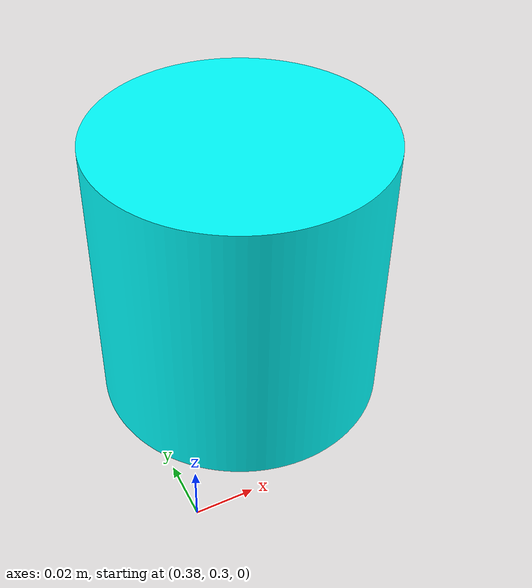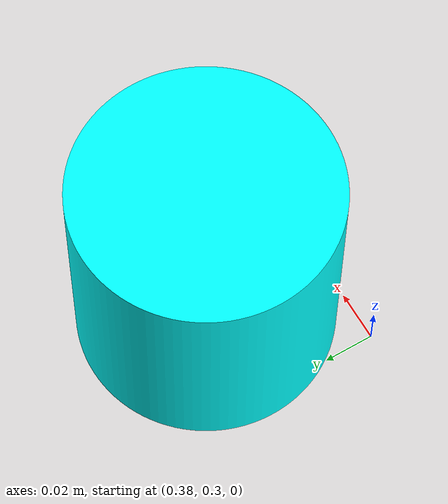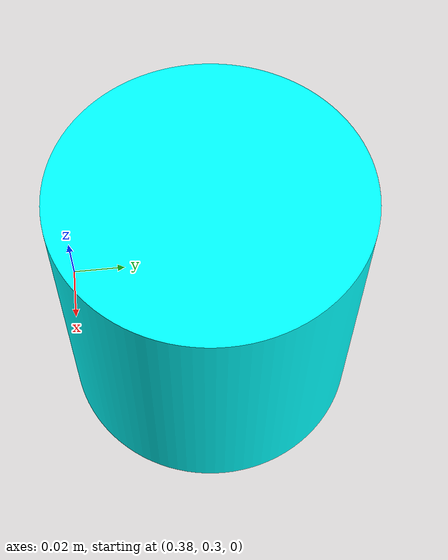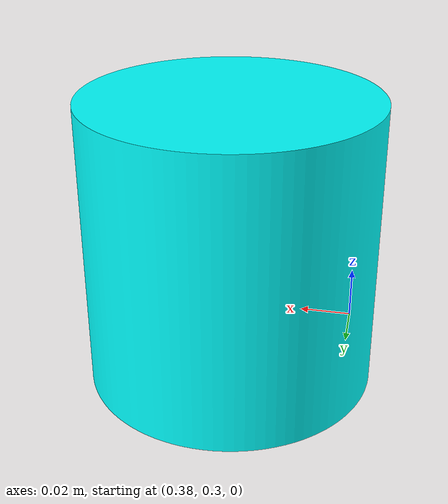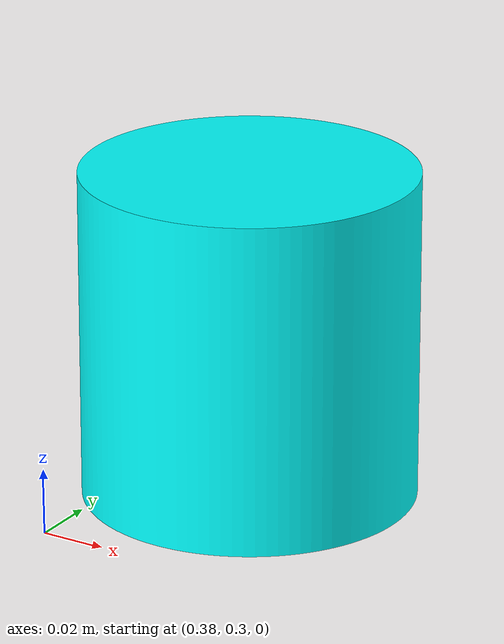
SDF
<?xml version="1.0" ?>
<sdf version="1.9">
  <world name="large_cap_world">
    <model name="large_cap">
      <static>false</static>
      <pose>0.42 0.35 0.055 0 3.14159 0</pose>
      <link name="large_cap_link">
	<collision name="large_cap_collision">
	  <geometry>
	    <mesh>
	      <uri>large_cap.obj</uri>
	      <scale>0.001 0.001 0.001</scale>
	    </mesh>
	  </geometry>
	</collision>
	<visual name="large_cap_visual">
	  <geometry>
	    <mesh>
	      <uri>large_cap.obj</uri>
	      <scale>0.001 0.001 0.001</scale>
	    </mesh>
	  </geometry>
	  <material>
	    <ambient>0 1.0 1.0 1.0</ambient>
	  </material>
	</visual>
      </link>
    </model>
  </world>
</sdf>
